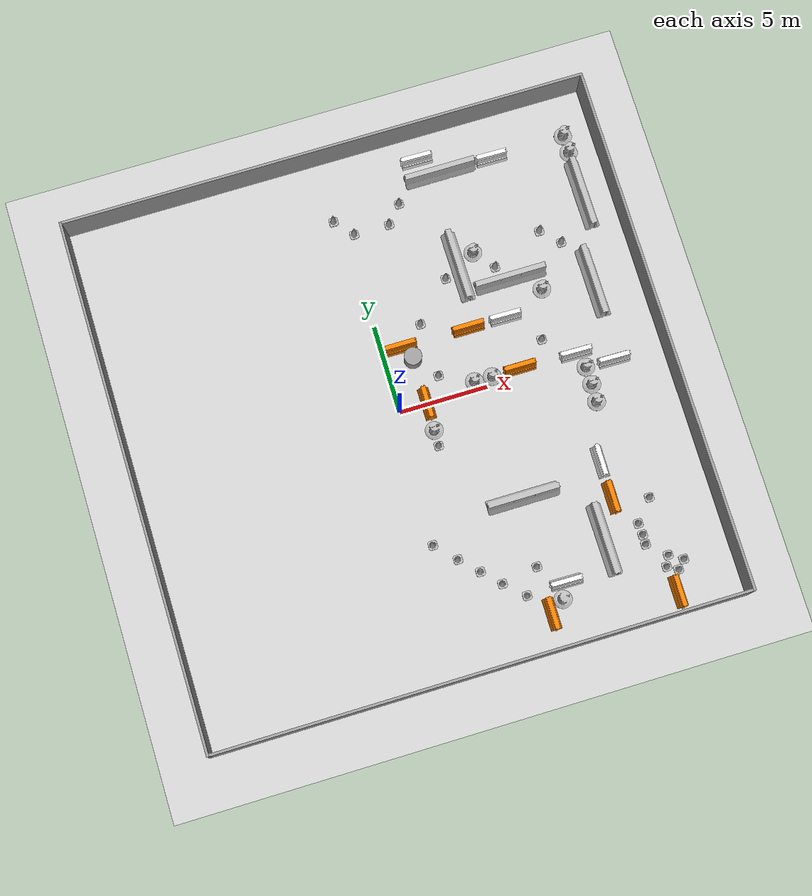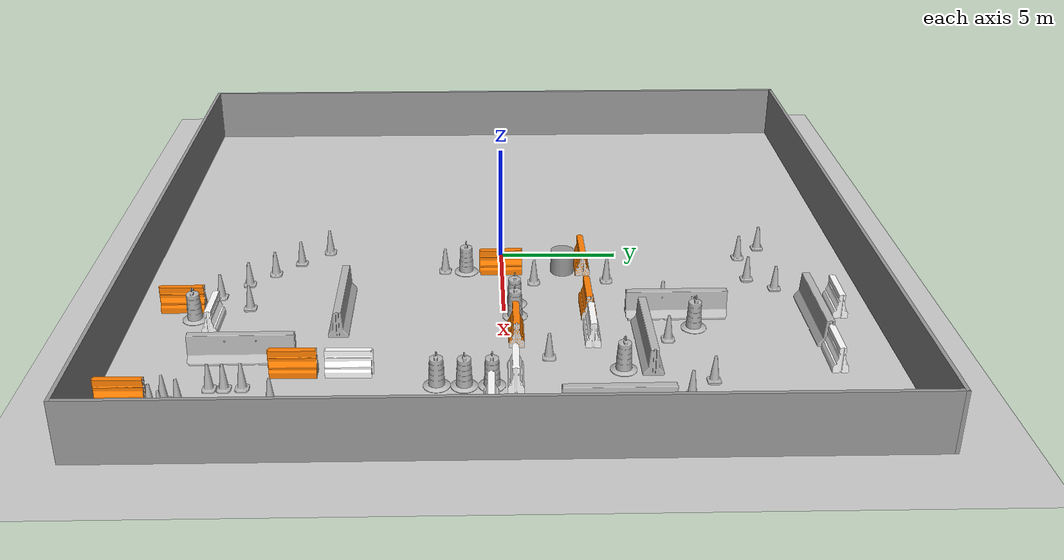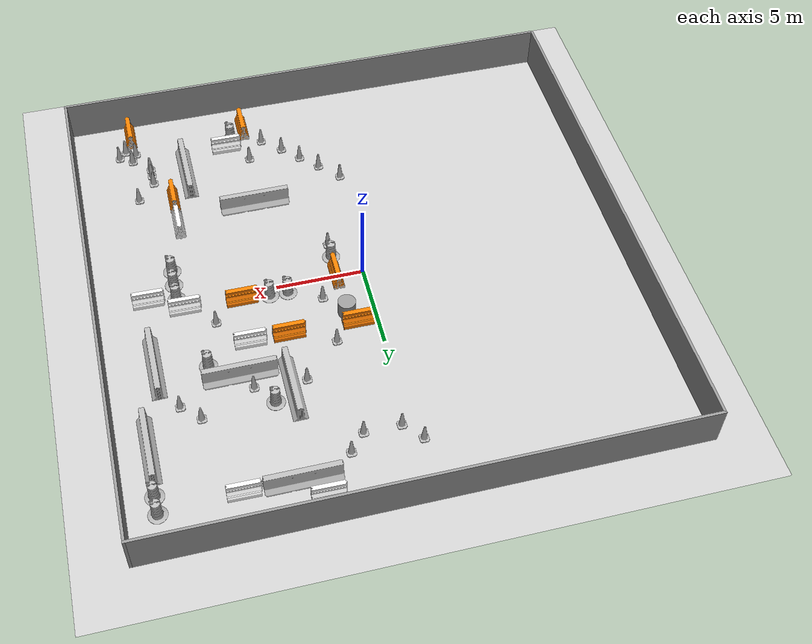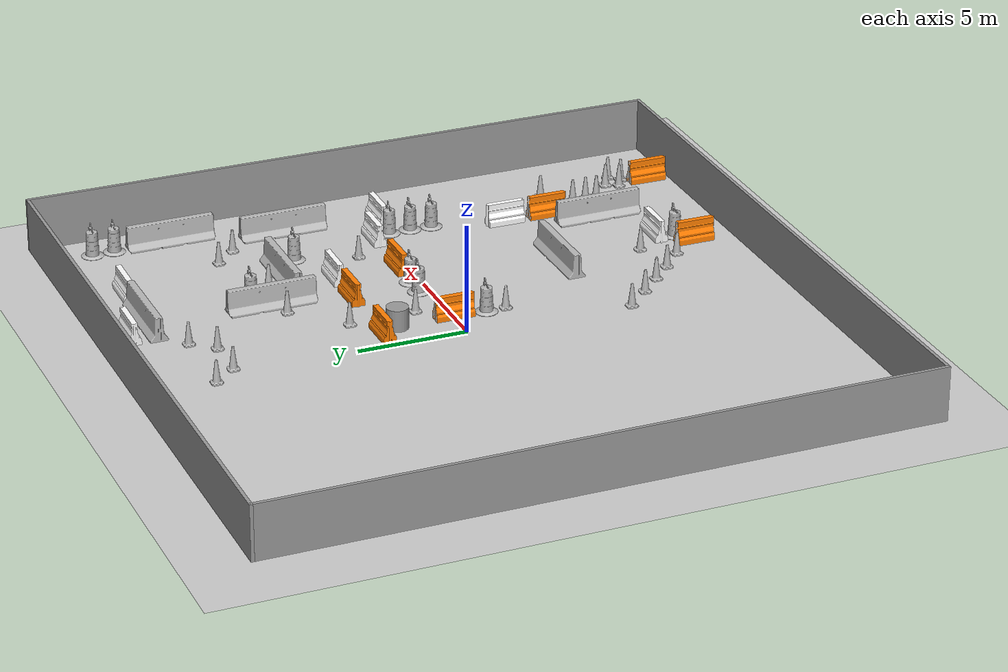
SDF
<sdf version="1.6">
 <world name="default">
  <model name="ground_plane">
   <static>1</static>
   <link name="link">
    <collision name="collision">
     <geometry><plane><normal>0 0 1</normal><size>100 100</size></plane></geometry>
     <surface>
      <contact><collide_bitmask>65535</collide_bitmask></contact>
      <friction><ode><mu>100</mu><mu2>50</mu2></ode></friction>
     </surface>
    </collision>
    <visual name="visual">
     <cast_shadows>0</cast_shadows>
     <geometry><plane><normal>0 0 1</normal><size>100 100</size></plane></geometry>
     <material>
      <script><uri>file://media/materials/scripts/gazebo.material</uri><name>Gazebo/Grey</name></script>
     </material>
    </visual>
   </link>
  </model>
  <model name="30x30">
   <pose>0.048804 0.0134 0 0 -0 0</pose>
   <link name="Wall_1">
    <collision name="Wall_1_Collision">
     <geometry><box><size>30.15 0.15 2.5</size></box></geometry>
     <pose>0 0 1.25 0 -0 0</pose>
    </collision>
    <visual name="Wall_1_Visual">
     <pose>0 0 1.25 0 -0 0</pose>
     <geometry><box><size>30.15 0.15 2.5</size></box></geometry>
     <material>
      <script><uri>file://media/materials/scripts/gazebo.material</uri><name>Gazebo/Grey</name></script>
      <ambient>1 1 1 1</ambient>
     </material>
     <meta><layer>0</layer></meta>
    </visual>
    <pose>0 15 0 0 -0 3.14159</pose>
   </link>
   <link name="Wall_2">
    <collision name="Wall_2_Collision">
     <geometry><box><size>30.15 0.15 2.5</size></box></geometry>
     <pose>0 0 1.25 0 -0 0</pose>
    </collision>
    <visual name="Wall_2_Visual">
     <pose>0 0 1.25 0 -0 0</pose>
     <geometry><box><size>30.15 0.15 2.5</size></box></geometry>
     <material>
      <script><uri>file://media/materials/scripts/gazebo.material</uri><name>Gazebo/Grey</name></script>
      <ambient>1 1 1 1</ambient>
     </material>
     <meta><layer>0</layer></meta>
    </visual>
    <pose>-15 0 0 0 -0 -1.5708</pose>
   </link>
   <link name="Wall_3">
    <collision name="Wall_3_Collision">
     <geometry><box><size>30.15 0.15 2.5</size></box></geometry>
     <pose>0 0 1.25 0 -0 0</pose>
    </collision>
    <visual name="Wall_3_Visual">
     <pose>0 0 1.25 0 -0 0</pose>
     <geometry><box><size>30.15 0.15 2.5</size></box></geometry>
     <material>
      <script><uri>file://media/materials/scripts/gazebo.material</uri><name>Gazebo/Grey</name></script>
      <ambient>1 1 1 1</ambient>
     </material>
     <meta><layer>0</layer></meta>
    </visual>
    <pose>0 -15 0 0 -0 0</pose>
   </link>
   <link name="Wall_4">
    <collision name="Wall_4_Collision">
     <geometry><box><size>30.15 0.15 2.5</size></box></geometry>
     <pose>0 0 1.25 0 -0 0</pose>
    </collision>
    <visual name="Wall_4_Visual">
     <pose>0 0 1.25 0 -0 0</pose>
     <geometry><box><size>30.15 0.15 2.5</size></box></geometry>
     <material>
      <script><uri>file://media/materials/scripts/gazebo.material</uri><name>Gazebo/Grey</name></script>
      <ambient>1 1 1 1</ambient>
     </material>
     <meta><layer>0</layer></meta>
    </visual>
    <pose>15 0 0 0 -0 1.5708</pose>
   </link>
   <static>1</static>
  </model>
  <model name="30x30env"><static>0</static><pose>32.1206 3.39752 0 0 -0 0</pose></model>
  <model name="Construction Cone_0_clone_1_clone_0">
   <link name="link">
    <collision name="collision">
     <geometry>
      <mesh><scale>10 10 10</scale><uri>model://construction_cone/meshes/construction_cone.dae</uri></mesh>
     </geometry>
    </collision>
    <visual name="visual">
     <geometry>
      <mesh><scale>10 10 10</scale><uri>model://construction_cone/meshes/construction_cone.dae</uri></mesh>
     </geometry>
    </visual>
    <inertial>
     <inertia><ixx>1</ixx><ixy>0</ixy><ixz>0</ixz><iyy>1</iyy><iyz>0</iyz><izz>1</izz></inertia>
     <mass>1</mass>
    </inertial>
   </link>
   <pose>-0.453751 11.482 -0 0 -0 0</pose>
  </model>
  <model name="Construction Cone_0_clone_1_clone_1">
   <link name="link">
    <collision name="collision">
     <geometry>
      <mesh><scale>10 10 10</scale><uri>model://construction_cone/meshes/construction_cone.dae</uri></mesh>
     </geometry>
    </collision>
    <visual name="visual">
     <geometry>
      <mesh><scale>10 10 10</scale><uri>model://construction_cone/meshes/construction_cone.dae</uri></mesh>
     </geometry>
    </visual>
    <inertial>
     <inertia><ixx>1</ixx><ixy>0</ixy><ixz>0</ixz><iyy>1</iyy><iyz>0</iyz><izz>1</izz></inertia>
     <mass>1</mass>
    </inertial>
   </link>
   <pose>0.453068 10.4369 -0 0 -1e-06 0</pose>
  </model>
  <model name="Construction Cone_0_clone_1_clone_2">
   <link name="link">
    <collision name="collision">
     <geometry>
      <mesh><scale>10 10 10</scale><uri>model://construction_cone/meshes/construction_cone.dae</uri></mesh>
     </geometry>
    </collision>
    <visual name="visual">
     <geometry>
      <mesh><scale>10 10 10</scale><uri>model://construction_cone/meshes/construction_cone.dae</uri></mesh>
     </geometry>
    </visual>
    <inertial>
     <inertia><ixx>1</ixx><ixy>0</ixy><ixz>0</ixz><iyy>1</iyy><iyz>0</iyz><izz>1</izz></inertia>
     <mass>1</mass>
    </inertial>
   </link>
   <pose>2.49545 10.4343 -0 0 -1e-06 0</pose>
  </model>
  <model name="Construction Cone_0_clone_1_clone_3">
   <link name="link">
    <collision name="collision">
     <geometry>
      <mesh><scale>10 10 10</scale><uri>model://construction_cone/meshes/construction_cone.dae</uri></mesh>
     </geometry>
    </collision>
    <visual name="visual">
     <geometry>
      <mesh><scale>10 10 10</scale><uri>model://construction_cone/meshes/construction_cone.dae</uri></mesh>
     </geometry>
    </visual>
    <inertial>
     <inertia><ixx>1</ixx><ixy>0</ixy><ixz>0</ixz><iyy>1</iyy><iyz>0</iyz><izz>1</izz></inertia>
     <mass>1</mass>
    </inertial>
   </link>
   <pose>3.36893 11.4327 -0 -0 -0 -0</pose>
  </model>
  <model name="jersey_barrier_clone">
   <static>1</static>
   <link name="link">
    <visual name="visual">
     <geometry><mesh><uri>model://jersey_barrier/meshes/jersey_barrier.dae</uri></mesh></geometry>
    </visual>
    <collision name="upright">
     <pose>0 0 0.5715 0 -0 0</pose>
     <geometry><box><size>4.06542 0.3063 1.143</size></box></geometry>
    </collision>
    <collision name="base">
     <pose>0 0 0.032258 0 -0 0</pose>
     <geometry><box><size>4.06542 0.8107 0.064516</size></box></geometry>
    </collision>
    <collision name="base2">
     <pose>0 0 0.1 0 -0 0</pose>
     <geometry><box><size>4.06542 0.65 0.1</size></box></geometry>
    </collision>
    <collision name="base3">
     <pose>0 0 0.2 0 -0 0</pose>
     <geometry><box><size>4.06542 0.5 0.1</size></box></geometry>
    </collision>
    <collision name="left-angle">
     <pose>0 -0.224 0.2401 0.9 -0 0</pose>
     <geometry><box><size>4.06542 0.5 0.064516</size></box></geometry>
    </collision>
    <collision name="right-angle">
     <pose>0 0.224 0.2401 -0.9 0 0</pose>
     <geometry><box><size>4.06542 0.5 0.064516</size></box></geometry>
    </collision>
   </link>
   <pose>6.07404 12.4971 0 0 -0 0</pose>
  </model>
  <model name="drc_practice_white_jersey_barrier_clone_clone_0">
   <static>1</static>
   <link name="link">
    <visual name="visual">
     <geometry>
      <mesh><uri>model://drc_practice_white_jersey_barrier/meshes/jersey_barrier.dae</uri></mesh>
     </geometry>
    </visual>
    <collision name="collision">
     <geometry>
      <mesh><uri>model://drc_practice_white_jersey_barrier/meshes/jersey_barrier.dae</uri></mesh>
     </geometry>
    </collision>
   </link>
   <pose>5.02744 13.5567 0 0 0 -1.58176</pose>
  </model>
  <model name="drc_practice_white_jersey_barrier_clone_clone_0_clone">
   <static>1</static>
   <link name="link">
    <visual name="visual">
     <geometry>
      <mesh><uri>model://drc_practice_white_jersey_barrier/meshes/jersey_barrier.dae</uri></mesh>
     </geometry>
    </visual>
    <collision name="collision">
     <geometry>
      <mesh><uri>model://drc_practice_white_jersey_barrier/meshes/jersey_barrier.dae</uri></mesh>
     </geometry>
    </collision>
   </link>
   <pose>9.10269 12.4765 0 0 0 -1.58176</pose>
  </model>
  <model name="drc_practice_organge_jersey_barrier_clone_clone">
   <static>1</static>
   <link name="link">
    <visual name="visual">
     <geometry>
      <mesh><uri>model://drc_practice_orange_jersey_barrier/meshes/jersey_barrier.dae</uri></mesh>
     </geometry>
    </visual>
    <collision name="collision">
     <geometry>
      <mesh><uri>model://drc_practice_orange_jersey_barrier/meshes/jersey_barrier.dae</uri></mesh>
     </geometry>
    </collision>
   </link>
   <pose>1.07469 3.45393 0 0 0 -1.56865</pose>
  </model>
  <model name="Construction Cone_0_clone_1_clone_1_clone_clone_0">
   <link name="link">
    <collision name="collision">
     <geometry>
      <mesh><scale>10 10 10</scale><uri>model://construction_cone/meshes/construction_cone.dae</uri></mesh>
     </geometry>
    </collision>
    <visual name="visual">
     <geometry>
      <mesh><scale>10 10 10</scale><uri>model://construction_cone/meshes/construction_cone.dae</uri></mesh>
     </geometry>
    </visual>
    <inertial>
     <inertia><ixx>1</ixx><ixy>0</ixy><ixz>0</ixz><iyy>1</iyy><iyz>0</iyz><izz>1</izz></inertia>
     <mass>1</mass>
    </inertial>
   </link>
   <pose>2.51012 4.42717 -0 0 -1e-06 0</pose>
  </model>
  <model name="unit_cylinder_clone">
   <pose>1.53143 2.61052 0.499996 1e-06 -0 0</pose>
   <link name="link">
    <inertial>
     <mass>1</mass>
     <inertia><ixx>0.145833</ixx><ixy>0</ixy><ixz>0</ixz><iyy>0.145833</iyy><iyz>0</iyz><izz>0.125</izz></inertia>
    </inertial>
    <collision name="collision">
     <geometry><cylinder><radius>0.5</radius><length>1</length></cylinder></geometry>
    </collision>
    <visual name="visual">
     <geometry><cylinder><radius>0.5</radius><length>1</length></cylinder></geometry>
     <material>
      <script><name>Gazebo/Grey</name><uri>file://media/materials/scripts/gazebo.material</uri></script>
     </material>
    </visual>
   </link>
  </model>
  <model name="Construction Cone_0_clone_1_clone_1_clone_clone_clone">
   <link name="link">
    <collision name="collision">
     <geometry>
      <mesh><scale>10 10 10</scale><uri>model://construction_cone/meshes/construction_cone.dae</uri></mesh>
     </geometry>
    </collision>
    <visual name="visual">
     <geometry>
      <mesh><scale>10 10 10</scale><uri>model://construction_cone/meshes/construction_cone.dae</uri></mesh>
     </geometry>
    </visual>
    <inertial>
     <inertia><ixx>1</ixx><ixy>0</ixy><ixz>0</ixz><iyy>1</iyy><iyz>0</iyz><izz>1</izz></inertia>
     <mass>1</mass>
    </inertial>
   </link>
   <pose>2.61559 1.33957 -0 0 -0 0</pose>
  </model>
  <model name="jersey_barrier_clone_clone_clone_clone">
   <static>1</static>
   <link name="link">
    <visual name="visual">
     <geometry><mesh><uri>model://jersey_barrier/meshes/jersey_barrier.dae</uri></mesh></geometry>
    </visual>
    <collision name="upright">
     <pose>0 0 0.5715 0 -0 0</pose>
     <geometry><box><size>4.06542 0.3063 1.143</size></box></geometry>
    </collision>
    <collision name="base">
     <pose>0 0 0.032258 0 -0 0</pose>
     <geometry><box><size>4.06542 0.8107 0.064516</size></box></geometry>
    </collision>
    <collision name="base2">
     <pose>0 0 0.1 0 -0 0</pose>
     <geometry><box><size>4.06542 0.65 0.1</size></box></geometry>
    </collision>
    <collision name="base3">
     <pose>0 0 0.2 0 -0 0</pose>
     <geometry><box><size>4.06542 0.5 0.1</size></box></geometry>
    </collision>
    <collision name="left-angle">
     <pose>0 -0.224 0.2401 0.9 -0 0</pose>
     <geometry><box><size>4.06542 0.5 0.064516</size></box></geometry>
    </collision>
    <collision name="right-angle">
     <pose>0 0.224 0.2401 -0.9 0 0</pose>
     <geometry><box><size>4.06542 0.5 0.064516</size></box></geometry>
    </collision>
   </link>
   <pose>5.4717 6.94023 0 0 0 -1.56391</pose>
  </model>
  <model name="Construction Cone_0_clone_1_clone_1_clone_clone_0_clone">
   <link name="link">
    <collision name="collision">
     <geometry>
      <mesh><scale>10 10 10</scale><uri>model://construction_cone/meshes/construction_cone.dae</uri></mesh>
     </geometry>
    </collision>
    <visual name="visual">
     <geometry>
      <mesh><scale>10 10 10</scale><uri>model://construction_cone/meshes/construction_cone.dae</uri></mesh>
     </geometry>
    </visual>
    <inertial>
     <inertia><ixx>1</ixx><ixy>0</ixy><ixz>0</ixz><iyy>1</iyy><iyz>0</iyz><izz>1</izz></inertia>
     <mass>1</mass>
    </inertial>
   </link>
   <pose>4.6175 6.51869 -0 0 -1e-06 0</pose>
  </model>
  <model name="Construction Barrel_clone_clone">
   <link name="link">
    <inertial>
     <pose>0 0 0.4 0 -0 0</pose>
     <mass>500</mass>
     <inertia><ixx>51.2096</ixx><iyy>51.2096</iyy><izz>25</izz><ixy>0</ixy><ixz>0</ixz><iyz>0</iyz></inertia>
    </inertial>
    <collision name="collision">
     <geometry><mesh><uri>model://construction_barrel/meshes/construction_barrel.dae</uri></mesh></geometry>
    </collision>
    <visual name="visual">
     <geometry><mesh><uri>model://construction_barrel/meshes/construction_barrel.dae</uri></mesh></geometry>
    </visual>
   </link>
   <pose>6.50992 7.52143 -2e-06 -5e-06 -4e-06 -0.00042</pose>
  </model>
  <model name="jersey_barrier_clone_clone_0">
   <static>1</static>
   <link name="link">
    <visual name="visual">
     <geometry><mesh><uri>model://jersey_barrier/meshes/jersey_barrier.dae</uri></mesh></geometry>
    </visual>
    <collision name="upright">
     <pose>0 0 0.5715 0 -0 0</pose>
     <geometry><box><size>4.06542 0.3063 1.143</size></box></geometry>
    </collision>
    <collision name="base">
     <pose>0 0 0.032258 0 -0 0</pose>
     <geometry><box><size>4.06542 0.8107 0.064516</size></box></geometry>
    </collision>
    <collision name="base2">
     <pose>0 0 0.1 0 -0 0</pose>
     <geometry><box><size>4.06542 0.65 0.1</size></box></geometry>
    </collision>
    <collision name="base3">
     <pose>0 0 0.2 0 -0 0</pose>
     <geometry><box><size>4.06542 0.5 0.1</size></box></geometry>
    </collision>
    <collision name="left-angle">
     <pose>0 -0.224 0.2401 0.9 -0 0</pose>
     <geometry><box><size>4.06542 0.5 0.064516</size></box></geometry>
    </collision>
    <collision name="right-angle">
     <pose>0 0.224 0.2401 -0.9 0 0</pose>
     <geometry><box><size>4.06542 0.5 0.064516</size></box></geometry>
    </collision>
   </link>
   <pose>8.03198 5.48004 0 0 -0 0</pose>
  </model>
  <model name="Construction Cone_0_clone_1_clone_1_clone_clone_0_clone_0">
   <link name="link">
    <collision name="collision">
     <geometry>
      <mesh><scale>10 10 10</scale><uri>model://construction_cone/meshes/construction_cone.dae</uri></mesh>
     </geometry>
    </collision>
    <visual name="visual">
     <geometry>
      <mesh><scale>10 10 10</scale><uri>model://construction_cone/meshes/construction_cone.dae</uri></mesh>
     </geometry>
    </visual>
    <inertial>
     <inertia><ixx>1</ixx><ixy>0</ixy><ixz>0</ixz><iyy>1</iyy><iyz>0</iyz><izz>1</izz></inertia>
     <mass>1</mass>
    </inertial>
   </link>
   <pose>7.45326 6.3667 -0 0 -1e-06 0</pose>
  </model>
  <model name="Construction Barrel_clone_clone_clone">
   <link name="link">
    <inertial>
     <pose>0 0 0.4 0 -0 0</pose>
     <mass>500</mass>
     <inertia><ixx>51.2096</ixx><iyy>51.2096</iyy><izz>25</izz><ixy>0</ixy><ixz>0</ixz><iyz>0</iyz></inertia>
    </inertial>
    <collision name="collision">
     <geometry><mesh><uri>model://construction_barrel/meshes/construction_barrel.dae</uri></mesh></geometry>
    </collision>
    <visual name="visual">
     <geometry><mesh><uri>model://construction_barrel/meshes/construction_barrel.dae</uri></mesh></geometry>
    </visual>
   </link>
   <pose>9.5802 4.40795 -1e-06 3e-06 -2e-06 -0.000454</pose>
  </model>
  <model name="jersey_barrier_clone_clone_clone_clone_clone">
   <static>1</static>
   <link name="link">
    <visual name="visual">
     <geometry><mesh><uri>model://jersey_barrier/meshes/jersey_barrier.dae</uri></mesh></geometry>
    </visual>
    <collision name="upright">
     <pose>0 0 0.5715 0 -0 0</pose>
     <geometry><box><size>4.06542 0.3063 1.143</size></box></geometry>
    </collision>
    <collision name="base">
     <pose>0 0 0.032258 0 -0 0</pose>
     <geometry><box><size>4.06542 0.8107 0.064516</size></box></geometry>
    </collision>
    <collision name="base2">
     <pose>0 0 0.1 0 -0 0</pose>
     <geometry><box><size>4.06542 0.65 0.1</size></box></geometry>
    </collision>
    <collision name="base3">
     <pose>0 0 0.2 0 -0 0</pose>
     <geometry><box><size>4.06542 0.5 0.1</size></box></geometry>
    </collision>
    <collision name="left-angle">
     <pose>0 -0.224 0.2401 0.9 -0 0</pose>
     <geometry><box><size>4.06542 0.5 0.064516</size></box></geometry>
    </collision>
    <collision name="right-angle">
     <pose>0 0.224 0.2401 -0.9 0 0</pose>
     <geometry><box><size>4.06542 0.5 0.064516</size></box></geometry>
    </collision>
   </link>
   <pose>13.3725 8.96891 0 0 0 -1.56391</pose>
  </model>
  <model name="Construction Barrel_clone_clone_clone_clone">
   <link name="link">
    <inertial>
     <pose>0 0 0.4 0 -0 0</pose>
     <mass>500</mass>
     <inertia><ixx>51.2096</ixx><iyy>51.2096</iyy><izz>25</izz><ixy>0</ixy><ixz>0</ixz><iyz>0</iyz></inertia>
    </inertial>
    <collision name="collision">
     <geometry><mesh><uri>model://construction_barrel/meshes/construction_barrel.dae</uri></mesh></geometry>
    </collision>
    <visual name="visual">
     <geometry><mesh><uri>model://construction_barrel/meshes/construction_barrel.dae</uri></mesh></geometry>
    </visual>
   </link>
   <pose>13.4236 12.6037 -1e-06 1e-06 -9e-06 0.03269</pose>
  </model>
  <model name="Construction Barrel_clone_clone_clone_clone_0">
   <link name="link">
    <inertial>
     <pose>0 0 0.4 0 -0 0</pose>
     <mass>500</mass>
     <inertia><ixx>51.2096</ixx><iyy>51.2096</iyy><izz>25</izz><ixy>0</ixy><ixz>0</ixz><iyz>0</iyz></inertia>
    </inertial>
    <collision name="collision">
     <geometry><mesh><uri>model://construction_barrel/meshes/construction_barrel.dae</uri></mesh></geometry>
    </collision>
    <visual name="visual">
     <geometry><mesh><uri>model://construction_barrel/meshes/construction_barrel.dae</uri></mesh></geometry>
    </visual>
   </link>
   <pose>13.4409 11.5814 -1e-06 -7e-06 -7e-06 -0.012611</pose>
  </model>
  <model name="jersey_barrier_clone_clone_clone_clone_clone_clone">
   <static>1</static>
   <link name="link">
    <visual name="visual">
     <geometry><mesh><uri>model://jersey_barrier/meshes/jersey_barrier.dae</uri></mesh></geometry>
    </visual>
    <collision name="upright">
     <pose>0 0 0.5715 0 -0 0</pose>
     <geometry><box><size>4.06542 0.3063 1.143</size></box></geometry>
    </collision>
    <collision name="base">
     <pose>0 0 0.032258 0 -0 0</pose>
     <geometry><box><size>4.06542 0.8107 0.064516</size></box></geometry>
    </collision>
    <collision name="base2">
     <pose>0 0 0.1 0 -0 0</pose>
     <geometry><box><size>4.06542 0.65 0.1</size></box></geometry>
    </collision>
    <collision name="base3">
     <pose>0 0 0.2 0 -0 0</pose>
     <geometry><box><size>4.06542 0.5 0.1</size></box></geometry>
    </collision>
    <collision name="left-angle">
     <pose>0 -0.224 0.2401 0.9 -0 0</pose>
     <geometry><box><size>4.06542 0.5 0.064516</size></box></geometry>
    </collision>
    <collision name="right-angle">
     <pose>0 0.224 0.2401 -0.9 0 0</pose>
     <geometry><box><size>4.06542 0.5 0.064516</size></box></geometry>
    </collision>
   </link>
   <pose>12.4106 3.92831 0 0 0 -1.56391</pose>
  </model>
  <model name="Construction Cone_0_clone_1_clone_1_clone_clone_0_clone_0_clone">
   <link name="link">
    <collision name="collision">
     <geometry>
      <mesh><scale>10 10 10</scale><uri>model://construction_cone/meshes/construction_cone.dae</uri></mesh>
     </geometry>
    </collision>
    <visual name="visual">
     <geometry>
      <mesh><scale>10 10 10</scale><uri>model://construction_cone/meshes/construction_cone.dae</uri></mesh>
     </geometry>
    </visual>
    <inertial>
     <inertia><ixx>1</ixx><ixy>0</ixy><ixz>0</ixz><iyy>1</iyy><iyz>0</iyz><izz>1</izz></inertia>
     <mass>1</mass>
    </inertial>
   </link>
   <pose>11.4326 6.67212 -0 0 -1e-06 0</pose>
  </model>
  <model name="Construction Cone_0_clone_1_clone_1_clone_clone_0_clone_0_clone_0">
   <link name="link">
    <collision name="collision">
     <geometry>
      <mesh><scale>10 10 10</scale><uri>model://construction_cone/meshes/construction_cone.dae</uri></mesh>
     </geometry>
    </collision>
    <visual name="visual">
     <geometry>
      <mesh><scale>10 10 10</scale><uri>model://construction_cone/meshes/construction_cone.dae</uri></mesh>
     </geometry>
    </visual>
    <inertial>
     <inertia><ixx>1</ixx><ixy>0</ixy><ixz>0</ixz><iyy>1</iyy><iyz>0</iyz><izz>1</izz></inertia>
     <mass>1</mass>
    </inertial>
   </link>
   <pose>10.4548 7.65109 -0 -0 -0 -0</pose>
  </model>
  <model name="drc_practice_organge_jersey_barrier_clone_clone_clone">
   <static>1</static>
   <link name="link">
    <visual name="visual">
     <geometry>
      <mesh><uri>model://drc_practice_orange_jersey_barrier/meshes/jersey_barrier.dae</uri></mesh>
     </geometry>
    </visual>
    <collision name="collision">
     <geometry>
      <mesh><uri>model://drc_practice_orange_jersey_barrier/meshes/jersey_barrier.dae</uri></mesh>
     </geometry>
    </collision>
   </link>
   <pose>4.96339 3.42606 0 0 0 -1.56865</pose>
  </model>
  <model name="drc_practice_white_jersey_barrier_clone_clone_0_clone_clone">
   <static>1</static>
   <link name="link">
    <visual name="visual">
     <geometry>
      <mesh><uri>model://drc_practice_white_jersey_barrier/meshes/jersey_barrier.dae</uri></mesh>
     </geometry>
    </visual>
    <collision name="collision">
     <geometry>
      <mesh><uri>model://drc_practice_white_jersey_barrier/meshes/jersey_barrier.dae</uri></mesh>
     </geometry>
    </collision>
   </link>
   <pose>7.11317 3.42217 0 0 0 -1.58176</pose>
  </model>
  <model name="drc_practice_organge_jersey_barrier_clone_clone_0_clone">
   <static>1</static>
   <link name="link">
    <visual name="visual">
     <geometry>
      <mesh><uri>model://drc_practice_orange_jersey_barrier/meshes/jersey_barrier.dae</uri></mesh>
     </geometry>
    </visual>
    <collision name="collision">
     <geometry>
      <mesh><uri>model://drc_practice_orange_jersey_barrier/meshes/jersey_barrier.dae</uri></mesh>
     </geometry>
    </collision>
   </link>
   <pose>1.54455 -0.020357 0 0 -0 0</pose>
  </model>
  <model name="Construction Barrel_clone_clone_0_clone_clone">
   <link name="link">
    <inertial>
     <pose>0 0 0.4 0 -0 0</pose>
     <mass>500</mass>
     <inertia><ixx>51.2096</ixx><iyy>51.2096</iyy><izz>25</izz><ixy>0</ixy><ixz>0</ixz><iyz>0</iyz></inertia>
    </inertial>
    <collision name="collision">
     <geometry><mesh><uri>model://construction_barrel/meshes/construction_barrel.dae</uri></mesh></geometry>
    </collision>
    <visual name="visual">
     <geometry><mesh><uri>model://construction_barrel/meshes/construction_barrel.dae</uri></mesh></geometry>
    </visual>
   </link>
   <pose>1.49767 -1.52504 -2e-06 -5e-06 -4e-06 -0.000471</pose>
  </model>
  <model name="Construction Cone_0_clone_1_clone_1_clone_0_clone">
   <link name="link">
    <collision name="collision">
     <geometry>
      <mesh><scale>10 10 10</scale><uri>model://construction_cone/meshes/construction_cone.dae</uri></mesh>
     </geometry>
    </collision>
    <visual name="visual">
     <geometry>
      <mesh><scale>10 10 10</scale><uri>model://construction_cone/meshes/construction_cone.dae</uri></mesh>
     </geometry>
    </visual>
    <inertial>
     <inertia><ixx>1</ixx><ixy>0</ixy><ixz>0</ixz><iyy>1</iyy><iyz>0</iyz><izz>1</izz></inertia>
     <mass>1</mass>
    </inertial>
   </link>
   <pose>1.48454 -2.42762 -0 0 -1e-06 0</pose>
  </model>
  <model name="jersey_barrier_clone_clone_0_clone">
   <static>1</static>
   <link name="link">
    <visual name="visual">
     <geometry><mesh><uri>model://jersey_barrier/meshes/jersey_barrier.dae</uri></mesh></geometry>
    </visual>
    <collision name="upright">
     <pose>0 0 0.5715 0 -0 0</pose>
     <geometry><box><size>4.06542 0.3063 1.143</size></box></geometry>
    </collision>
    <collision name="base">
     <pose>0 0 0.032258 0 -0 0</pose>
     <geometry><box><size>4.06542 0.8107 0.064516</size></box></geometry>
    </collision>
    <collision name="base2">
     <pose>0 0 0.1 0 -0 0</pose>
     <geometry><box><size>4.06542 0.65 0.1</size></box></geometry>
    </collision>
    <collision name="base3">
     <pose>0 0 0.2 0 -0 0</pose>
     <geometry><box><size>4.06542 0.5 0.1</size></box></geometry>
    </collision>
    <collision name="left-angle">
     <pose>0 -0.224 0.2401 0.9 -0 0</pose>
     <geometry><box><size>4.06542 0.5 0.064516</size></box></geometry>
    </collision>
    <collision name="right-angle">
     <pose>0 0.224 0.2401 -0.9 0 0</pose>
     <geometry><box><size>4.06542 0.5 0.064516</size></box></geometry>
    </collision>
   </link>
   <pose>5.01821 -6.51725 0 0 -0 0</pose>
  </model>
  <model name="Construction Barrel_clone_clone_clone_clone_1">
   <link name="link">
    <inertial>
     <pose>0 0 0.4 0 -0 0</pose>
     <mass>500</mass>
     <inertia><ixx>51.2096</ixx><iyy>51.2096</iyy><izz>25</izz><ixy>0</ixy><ixz>0</ixz><iyz>0</iyz></inertia>
    </inertial>
    <collision name="collision">
     <geometry><mesh><uri>model://construction_barrel/meshes/construction_barrel.dae</uri></mesh></geometry>
    </collision>
    <visual name="visual">
     <geometry><mesh><uri>model://construction_barrel/meshes/construction_barrel.dae</uri></mesh></geometry>
    </visual>
   </link>
   <pose>4.42816 0.468601 -1e-06 3e-06 -2e-06 -0.000454</pose>
  </model>
  <model name="Construction Barrel_clone_clone_clone_clone_2">
   <link name="link">
    <inertial>
     <pose>0 0 0.4 0 -0 0</pose>
     <mass>500</mass>
     <inertia><ixx>51.2096</ixx><iyy>51.2096</iyy><izz>25</izz><ixy>0</ixy><ixz>0</ixz><iyz>0</iyz></inertia>
    </inertial>
    <collision name="collision">
     <geometry><mesh><uri>model://construction_barrel/meshes/construction_barrel.dae</uri></mesh></geometry>
    </collision>
    <visual name="visual">
     <geometry><mesh><uri>model://construction_barrel/meshes/construction_barrel.dae</uri></mesh></geometry>
    </visual>
   </link>
   <pose>5.45737 0.453535 -2e-06 -5e-06 -4e-06 -0.000471</pose>
  </model>
  <model name="drc_practice_organge_jersey_barrier_clone_clone_clone_clone">
   <static>1</static>
   <link name="link">
    <visual name="visual">
     <geometry>
      <mesh><uri>model://drc_practice_orange_jersey_barrier/meshes/jersey_barrier.dae</uri></mesh>
     </geometry>
    </visual>
    <collision name="collision">
     <geometry>
      <mesh><uri>model://drc_practice_orange_jersey_barrier/meshes/jersey_barrier.dae</uri></mesh>
     </geometry>
    </collision>
   </link>
   <pose>7.03848 0.454688 0 0 0 -1.56865</pose>
  </model>
  <model name="Construction Cone_0_clone_1_clone_1_clone_clone_clone_clone">
   <link name="link">
    <collision name="collision">
     <geometry>
      <mesh><scale>10 10 10</scale><uri>model://construction_cone/meshes/construction_cone.dae</uri></mesh>
     </geometry>
    </collision>
    <visual name="visual">
     <geometry>
      <mesh><scale>10 10 10</scale><uri>model://construction_cone/meshes/construction_cone.dae</uri></mesh>
     </geometry>
    </visual>
    <inertial>
     <inertia><ixx>1</ixx><ixy>0</ixy><ixz>0</ixz><iyy>1</iyy><iyz>0</iyz><izz>1</izz></inertia>
     <mass>1</mass>
    </inertial>
   </link>
   <pose>8.70129 1.65433 -0 0 -1e-06 0</pose>
  </model>
  <model name="drc_practice_white_jersey_barrier_clone_clone_0_clone_clone_clone">
   <static>1</static>
   <link name="link">
    <visual name="visual">
     <geometry>
      <mesh><uri>model://drc_practice_white_jersey_barrier/meshes/jersey_barrier.dae</uri></mesh>
     </geometry>
    </visual>
    <collision name="collision">
     <geometry>
      <mesh><uri>model://drc_practice_white_jersey_barrier/meshes/jersey_barrier.dae</uri></mesh>
     </geometry>
    </collision>
   </link>
   <pose>10.2382 0.338848 0 0 0 -1.58176</pose>
  </model>
  <model name="Construction Barrel_clone_clone_clone_clone_3">
   <link name="link">
    <inertial>
     <pose>0 0 0.4 0 -0 0</pose>
     <mass>500</mass>
     <inertia><ixx>51.2096</ixx><iyy>51.2096</iyy><izz>25</izz><ixy>0</ixy><ixz>0</ixz><iyz>0</iyz></inertia>
    </inertial>
    <collision name="collision">
     <geometry><mesh><uri>model://construction_barrel/meshes/construction_barrel.dae</uri></mesh></geometry>
    </collision>
    <visual name="visual">
     <geometry><mesh><uri>model://construction_barrel/meshes/construction_barrel.dae</uri></mesh></geometry>
    </visual>
   </link>
   <pose>10.5718 -0.537593 0 0 -0 -0.045602</pose>
  </model>
  <model name="Construction Barrel_clone_clone_clone_clone_4">
   <link name="link">
    <inertial>
     <pose>0 0 0.4 0 -0 0</pose>
     <mass>500</mass>
     <inertia><ixx>51.2096</ixx><iyy>51.2096</iyy><izz>25</izz><ixy>0</ixy><ixz>0</ixz><iyz>0</iyz></inertia>
    </inertial>
    <collision name="collision">
     <geometry><mesh><uri>model://construction_barrel/meshes/construction_barrel.dae</uri></mesh></geometry>
    </collision>
    <visual name="visual">
     <geometry><mesh><uri>model://construction_barrel/meshes/construction_barrel.dae</uri></mesh></geometry>
    </visual>
   </link>
   <pose>10.5852 -1.55536 -2e-06 0 7e-06 0.051347</pose>
  </model>
  <model name="Construction Barrel_clone_clone_clone_clone_5">
   <link name="link">
    <inertial>
     <pose>0 0 0.4 0 -0 0</pose>
     <mass>500</mass>
     <inertia><ixx>51.2096</ixx><iyy>51.2096</iyy><izz>25</izz><ixy>0</ixy><ixz>0</ixz><iyz>0</iyz></inertia>
    </inertial>
    <collision name="collision">
     <geometry><mesh><uri>model://construction_barrel/meshes/construction_barrel.dae</uri></mesh></geometry>
    </collision>
    <visual name="visual">
     <geometry><mesh><uri>model://construction_barrel/meshes/construction_barrel.dae</uri></mesh></geometry>
    </visual>
   </link>
   <pose>10.5429 -2.56932 1e-06 3e-06 2e-06 -0.002781</pose>
  </model>
  <model name="drc_practice_white_jersey_barrier_clone_clone_0_clone_clone_clone_clone">
   <static>1</static>
   <link name="link">
    <visual name="visual">
     <geometry>
      <mesh><uri>model://drc_practice_white_jersey_barrier/meshes/jersey_barrier.dae</uri></mesh>
     </geometry>
    </visual>
    <collision name="collision">
     <geometry>
      <mesh><uri>model://drc_practice_white_jersey_barrier/meshes/jersey_barrier.dae</uri></mesh>
     </geometry>
    </collision>
   </link>
   <pose>12.147 -0.588129 0 0 0 -1.58176</pose>
  </model>
  <model name="drc_practice_white_jersey_barrier_clone_clone_clone_0_clone_0">
   <static>1</static>
   <link name="link">
    <visual name="visual">
     <geometry>
      <mesh><uri>model://drc_practice_white_jersey_barrier/meshes/jersey_barrier.dae</uri></mesh>
     </geometry>
    </visual>
    <collision name="collision">
     <geometry>
      <mesh><uri>model://drc_practice_white_jersey_barrier/meshes/jersey_barrier.dae</uri></mesh>
     </geometry>
    </collision>
   </link>
   <pose>9.65687 -5.85338 0 0 -0 3.13979</pose>
  </model>
  <model name="drc_practice_organge_jersey_barrier_clone_clone_0_clone_clone">
   <static>1</static>
   <link name="link">
    <visual name="visual">
     <geometry>
      <mesh><uri>model://drc_practice_orange_jersey_barrier/meshes/jersey_barrier.dae</uri></mesh>
     </geometry>
    </visual>
    <collision name="collision">
     <geometry>
      <mesh><uri>model://drc_practice_orange_jersey_barrier/meshes/jersey_barrier.dae</uri></mesh>
     </geometry>
    </collision>
   </link>
   <pose>9.6583 -7.89542 0 0 -0 0</pose>
  </model>
  <model name="jersey_barrier_clone_clone_clone_clone_0_clone">
   <static>1</static>
   <link name="link">
    <visual name="visual">
     <geometry><mesh><uri>model://jersey_barrier/meshes/jersey_barrier.dae</uri></mesh></geometry>
    </visual>
    <collision name="upright">
     <pose>0 0 0.5715 0 -0 0</pose>
     <geometry><box><size>4.06542 0.3063 1.143</size></box></geometry>
    </collision>
    <collision name="base">
     <pose>0 0 0.032258 0 -0 0</pose>
     <geometry><box><size>4.06542 0.8107 0.064516</size></box></geometry>
    </collision>
    <collision name="base2">
     <pose>0 0 0.1 0 -0 0</pose>
     <geometry><box><size>4.06542 0.65 0.1</size></box></geometry>
    </collision>
    <collision name="base3">
     <pose>0 0 0.2 0 -0 0</pose>
     <geometry><box><size>4.06542 0.5 0.1</size></box></geometry>
    </collision>
    <collision name="left-angle">
     <pose>0 -0.224 0.2401 0.9 -0 0</pose>
     <geometry><box><size>4.06542 0.5 0.064516</size></box></geometry>
    </collision>
    <collision name="right-angle">
     <pose>0 0.224 0.2401 -0.9 0 0</pose>
     <geometry><box><size>4.06542 0.5 0.064516</size></box></geometry>
    </collision>
   </link>
   <pose>8.57619 -9.98274 0 0 0 -1.56391</pose>
  </model>
  <model name="Construction Cone_0_clone_1_clone_1_clone_clone_clone_clone_clone">
   <link name="link">
    <collision name="collision">
     <geometry>
      <mesh><scale>10 10 10</scale><uri>model://construction_cone/meshes/construction_cone.dae</uri></mesh>
     </geometry>
    </collision>
    <visual name="visual">
     <geometry>
      <mesh><scale>10 10 10</scale><uri>model://construction_cone/meshes/construction_cone.dae</uri></mesh>
     </geometry>
    </visual>
    <inertial>
     <inertia><ixx>1</ixx><ixy>0</ixy><ixz>0</ixz><iyy>1</iyy><iyz>0</iyz><izz>1</izz></inertia>
     <mass>1</mass>
    </inertial>
   </link>
   <pose>10.6323 -9.65409 -0 0 -1e-06 0</pose>
  </model>
  <model name="Construction Cone_0_clone_1_clone_1_clone_clone_clone_clone_clone_0">
   <link name="link">
    <collision name="collision">
     <geometry>
      <mesh><scale>10 10 10</scale><uri>model://construction_cone/meshes/construction_cone.dae</uri></mesh>
     </geometry>
    </collision>
    <visual name="visual">
     <geometry>
      <mesh><scale>10 10 10</scale><uri>model://construction_cone/meshes/construction_cone.dae</uri></mesh>
     </geometry>
    </visual>
    <inertial>
     <inertia><ixx>1</ixx><ixy>0</ixy><ixz>0</ixz><iyy>1</iyy><iyz>0</iyz><izz>1</izz></inertia>
     <mass>1</mass>
    </inertial>
   </link>
   <pose>10.6658 -10.3095 -0 0 -1e-06 0</pose>
  </model>
  <model name="Construction Cone_0_clone_1_clone_1_clone_clone_clone_clone_clone_1">
   <link name="link">
    <collision name="collision">
     <geometry>
      <mesh><scale>10 10 10</scale><uri>model://construction_cone/meshes/construction_cone.dae</uri></mesh>
     </geometry>
    </collision>
    <visual name="visual">
     <geometry>
      <mesh><scale>10 10 10</scale><uri>model://construction_cone/meshes/construction_cone.dae</uri></mesh>
     </geometry>
    </visual>
    <inertial>
     <inertia><ixx>1</ixx><ixy>0</ixy><ixz>0</ixz><iyy>1</iyy><iyz>0</iyz><izz>1</izz></inertia>
     <mass>1</mass>
    </inertial>
   </link>
   <pose>10.6586 -10.8548 -0 0 -1e-06 0</pose>
  </model>
  <model name="Construction Cone_0_clone_1_clone_1_clone_clone_clone_clone_clone_2">
   <link name="link">
    <collision name="collision">
     <geometry>
      <mesh><scale>10 10 10</scale><uri>model://construction_cone/meshes/construction_cone.dae</uri></mesh>
     </geometry>
    </collision>
    <visual name="visual">
     <geometry>
      <mesh><scale>10 10 10</scale><uri>model://construction_cone/meshes/construction_cone.dae</uri></mesh>
     </geometry>
    </visual>
    <inertial>
     <inertia><ixx>1</ixx><ixy>0</ixy><ixz>0</ixz><iyy>1</iyy><iyz>0</iyz><izz>1</izz></inertia>
     <mass>1</mass>
    </inertial>
   </link>
   <pose>11.6532 -8.46854 -0 0 -0 0</pose>
  </model>
  <model name="drc_practice_organge_jersey_barrier_clone_clone_0_clone_clone_clone">
   <static>1</static>
   <link name="link">
    <visual name="visual">
     <geometry>
      <mesh><uri>model://drc_practice_orange_jersey_barrier/meshes/jersey_barrier.dae</uri></mesh>
     </geometry>
    </visual>
    <collision name="collision">
     <geometry>
      <mesh><uri>model://drc_practice_orange_jersey_barrier/meshes/jersey_barrier.dae</uri></mesh>
     </geometry>
    </collision>
   </link>
   <pose>11.5237 -13.8152 0 0 -0 0</pose>
  </model>
  <model name="Construction Cone_0_clone_1_clone_1_clone_clone_clone_clone_clone_1_clone">
   <link name="link">
    <collision name="collision">
     <geometry>
      <mesh><scale>10 10 10</scale><uri>model://construction_cone/meshes/construction_cone.dae</uri></mesh>
     </geometry>
    </collision>
    <visual name="visual">
     <geometry>
      <mesh><scale>10 10 10</scale><uri>model://construction_cone/meshes/construction_cone.dae</uri></mesh>
     </geometry>
    </visual>
    <inertial>
     <inertia><ixx>1</ixx><ixy>0</ixy><ixz>0</ixz><iyy>1</iyy><iyz>0</iyz><izz>1</izz></inertia>
     <mass>1</mass>
    </inertial>
   </link>
   <pose>11.6455 -11.7608 -0 0 -1e-06 0</pose>
  </model>
  <model name="Construction Cone_0_clone_1_clone_1_clone_clone_clone_clone_clone_1_clone_0">
   <link name="link">
    <collision name="collision">
     <geometry>
      <mesh><scale>10 10 10</scale><uri>model://construction_cone/meshes/construction_cone.dae</uri></mesh>
     </geometry>
    </collision>
    <visual name="visual">
     <geometry>
      <mesh><scale>10 10 10</scale><uri>model://construction_cone/meshes/construction_cone.dae</uri></mesh>
     </geometry>
    </visual>
    <inertial>
     <inertia><ixx>1</ixx><ixy>0</ixy><ixz>0</ixz><iyy>1</iyy><iyz>0</iyz><izz>1</izz></inertia>
     <mass>1</mass>
    </inertial>
   </link>
   <pose>11.3769 -12.3383 -0 0 -1e-06 0</pose>
  </model>
  <model name="Construction Cone_0_clone_1_clone_1_clone_clone_clone_clone_clone_1_clone_1">
   <link name="link">
    <collision name="collision">
     <geometry>
      <mesh><scale>10 10 10</scale><uri>model://construction_cone/meshes/construction_cone.dae</uri></mesh>
     </geometry>
    </collision>
    <visual name="visual">
     <geometry>
      <mesh><scale>10 10 10</scale><uri>model://construction_cone/meshes/construction_cone.dae</uri></mesh>
     </geometry>
    </visual>
    <inertial>
     <inertia><ixx>1</ixx><ixy>0</ixy><ixz>0</ixz><iyy>1</iyy><iyz>0</iyz><izz>1</izz></inertia>
     <mass>1</mass>
    </inertial>
   </link>
   <pose>11.9431 -12.6672 -1e-05 -1e-06 0 0</pose>
  </model>
  <model name="Construction Cone_0_clone_1_clone_1_clone_clone_clone_clone_clone_1_clone_2">
   <link name="link">
    <collision name="collision">
     <geometry>
      <mesh><scale>10 10 10</scale><uri>model://construction_cone/meshes/construction_cone.dae</uri></mesh>
     </geometry>
    </collision>
    <visual name="visual">
     <geometry>
      <mesh><scale>10 10 10</scale><uri>model://construction_cone/meshes/construction_cone.dae</uri></mesh>
     </geometry>
    </visual>
    <inertial>
     <inertia><ixx>1</ixx><ixy>0</ixy><ixz>0</ixz><iyy>1</iyy><iyz>0</iyz><izz>1</izz></inertia>
     <mass>1</mass>
    </inertial>
   </link>
   <pose>12.3843 -12.2157 -0 0 -1e-06 0</pose>
  </model>
  <model name="drc_practice_white_jersey_barrier_clone_clone_0_clone_clone_clone_clone_clone">
   <static>1</static>
   <link name="link">
    <visual name="visual">
     <geometry>
      <mesh><uri>model://drc_practice_white_jersey_barrier/meshes/jersey_barrier.dae</uri></mesh>
     </geometry>
    </visual>
    <collision name="collision">
     <geometry>
      <mesh><uri>model://drc_practice_white_jersey_barrier/meshes/jersey_barrier.dae</uri></mesh>
     </geometry>
    </collision>
   </link>
   <pose>5.882 -11.5769 0 0 0 -1.58176</pose>
  </model>
  <model name="Construction Barrel_clone_clone_0_clone_1_clone_2">
   <link name="link">
    <inertial>
     <pose>0 0 0.4 0 -0 0</pose>
     <mass>500</mass>
     <inertia><ixx>51.2096</ixx><iyy>51.2096</iyy><izz>25</izz><ixy>0</ixy><ixz>0</ixz><iyz>0</iyz></inertia>
    </inertial>
    <collision name="collision">
     <geometry><mesh><uri>model://construction_barrel/meshes/construction_barrel.dae</uri></mesh></geometry>
    </collision>
    <visual name="visual">
     <geometry><mesh><uri>model://construction_barrel/meshes/construction_barrel.dae</uri></mesh></geometry>
    </visual>
   </link>
   <pose>5.45932 -12.4024 -2e-06 8e-06 -4e-06 0.086428</pose>
  </model>
  <model name="drc_practice_organge_jersey_barrier_clone_clone_0_clone_clone_clone_0">
   <static>1</static>
   <link name="link">
    <visual name="visual">
     <geometry>
      <mesh><uri>model://drc_practice_orange_jersey_barrier/meshes/jersey_barrier.dae</uri></mesh>
     </geometry>
    </visual>
    <collision name="collision">
     <geometry>
      <mesh><uri>model://drc_practice_orange_jersey_barrier/meshes/jersey_barrier.dae</uri></mesh>
     </geometry>
    </collision>
   </link>
   <pose>4.63417 -13.0035 0 0 -0 0</pose>
  </model>
  <model name="Construction Cone_0_clone_1_clone_1_clone_1_clone_clone_0">
   <link name="link">
    <collision name="collision">
     <geometry>
      <mesh><scale>10 10 10</scale><uri>model://construction_cone/meshes/construction_cone.dae</uri></mesh>
     </geometry>
    </collision>
    <visual name="visual">
     <geometry>
      <mesh><scale>10 10 10</scale><uri>model://construction_cone/meshes/construction_cone.dae</uri></mesh>
     </geometry>
    </visual>
    <inertial>
     <inertia><ixx>1</ixx><ixy>0</ixy><ixz>0</ixz><iyy>1</iyy><iyz>0</iyz><izz>1</izz></inertia>
     <mass>1</mass>
    </inertial>
   </link>
   <pose>4.63674 -10.3252 -0 -0 -0 -0</pose>
  </model>
  <model name="Construction Cone_0_clone_1_clone_1_clone_1_clone_clone_3_clone">
   <link name="link">
    <collision name="collision">
     <geometry>
      <mesh><scale>10 10 10</scale><uri>model://construction_cone/meshes/construction_cone.dae</uri></mesh>
     </geometry>
    </collision>
    <visual name="visual">
     <geometry>
      <mesh><scale>10 10 10</scale><uri>model://construction_cone/meshes/construction_cone.dae</uri></mesh>
     </geometry>
    </visual>
    <inertial>
     <inertia><ixx>1</ixx><ixy>0</ixy><ixz>0</ixz><iyy>1</iyy><iyz>0</iyz><izz>1</izz></inertia>
     <mass>1</mass>
    </inertial>
   </link>
   <pose>-0.423431 -7.58188 -0 0 -1e-06 0</pose>
  </model>
  <model name="Construction Cone_0_clone_1_clone_1_clone_1_clone_clone_3_clone_clone">
   <link name="link">
    <collision name="collision">
     <geometry>
      <mesh><scale>10 10 10</scale><uri>model://construction_cone/meshes/construction_cone.dae</uri></mesh>
     </geometry>
    </collision>
    <visual name="visual">
     <geometry>
      <mesh><scale>10 10 10</scale><uri>model://construction_cone/meshes/construction_cone.dae</uri></mesh>
     </geometry>
    </visual>
    <inertial>
     <inertia><ixx>1</ixx><ixy>0</ixy><ixz>0</ixz><iyy>1</iyy><iyz>0</iyz><izz>1</izz></inertia>
     <mass>1</mass>
    </inertial>
   </link>
   <pose>0.65602 -8.71601 -0 0 -1e-06 0</pose>
  </model>
  <model name="Construction Cone_0_clone_1_clone_1_clone_1_clone_clone_3_clone_clone_0">
   <link name="link">
    <collision name="collision">
     <geometry>
      <mesh><scale>10 10 10</scale><uri>model://construction_cone/meshes/construction_cone.dae</uri></mesh>
     </geometry>
    </collision>
    <visual name="visual">
     <geometry>
      <mesh><scale>10 10 10</scale><uri>model://construction_cone/meshes/construction_cone.dae</uri></mesh>
     </geometry>
    </visual>
    <inertial>
     <inertia><ixx>1</ixx><ixy>0</ixy><ixz>0</ixz><iyy>1</iyy><iyz>0</iyz><izz>1</izz></inertia>
     <mass>1</mass>
    </inertial>
   </link>
   <pose>1.62896 -9.70472 -0 0 -1e-06 0</pose>
  </model>
  <model name="Construction Cone_0_clone_1_clone_1_clone_1_clone_clone_3_clone_clone_1">
   <link name="link">
    <collision name="collision">
     <geometry>
      <mesh><scale>10 10 10</scale><uri>model://construction_cone/meshes/construction_cone.dae</uri></mesh>
     </geometry>
    </collision>
    <visual name="visual">
     <geometry>
      <mesh><scale>10 10 10</scale><uri>model://construction_cone/meshes/construction_cone.dae</uri></mesh>
     </geometry>
    </visual>
    <inertial>
     <inertia><ixx>1</ixx><ixy>0</ixy><ixz>0</ixz><iyy>1</iyy><iyz>0</iyz><izz>1</izz></inertia>
     <mass>1</mass>
    </inertial>
   </link>
   <pose>2.57538 -10.673 -0 0 -0 0</pose>
  </model>
  <model name="Construction Cone_0_clone_1_clone_1_clone_1_clone_clone_3_clone_clone_2">
   <link name="link">
    <collision name="collision">
     <geometry>
      <mesh><scale>10 10 10</scale><uri>model://construction_cone/meshes/construction_cone.dae</uri></mesh>
     </geometry>
    </collision>
    <visual name="visual">
     <geometry>
      <mesh><scale>10 10 10</scale><uri>model://construction_cone/meshes/construction_cone.dae</uri></mesh>
     </geometry>
    </visual>
    <inertial>
     <inertia><ixx>1</ixx><ixy>0</ixy><ixz>0</ixz><iyy>1</iyy><iyz>0</iyz><izz>1</izz></inertia>
     <mass>1</mass>
    </inertial>
   </link>
   <pose>3.65938 -11.668 -0 0 -1e-06 0</pose>
  </model>
 </world>
</sdf>
